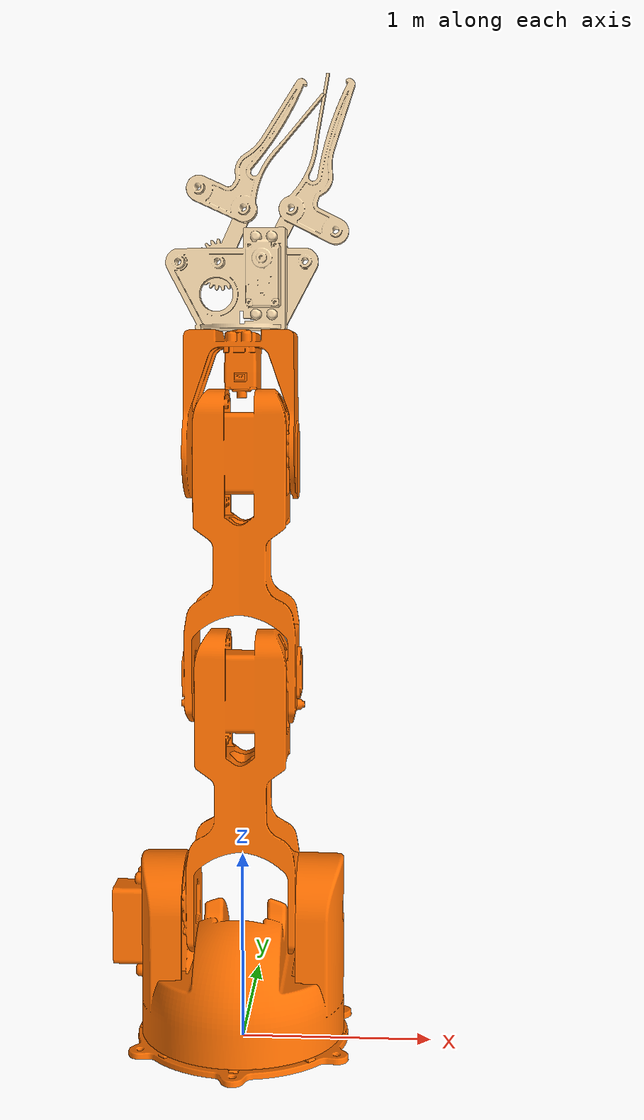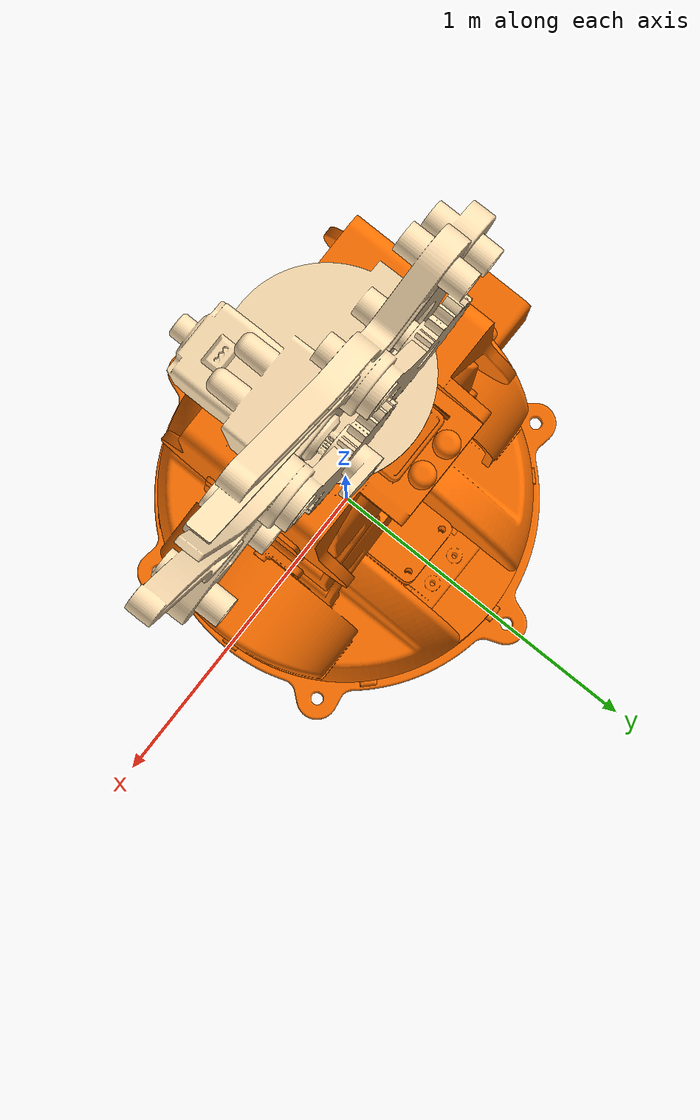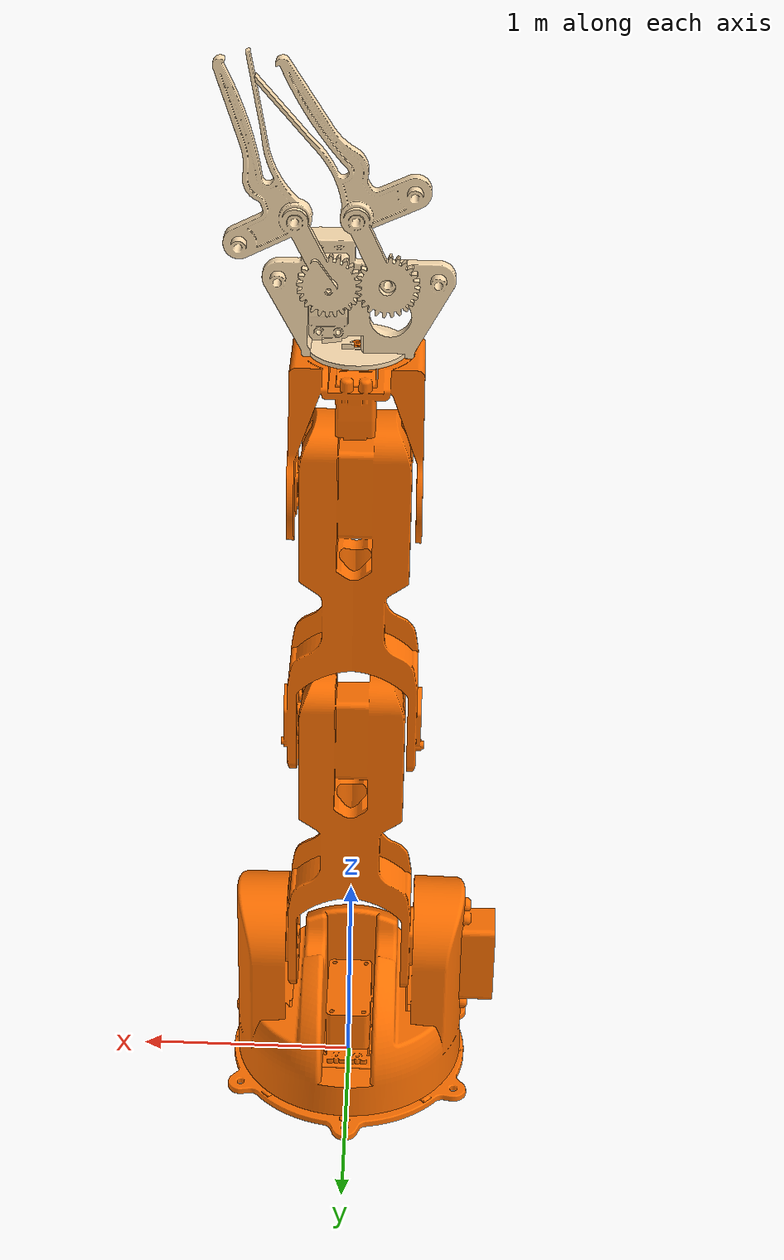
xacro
<?xml version="1.0" ?>
<robot name="tinkerkit" xmlns:xacro="http://www.ros.org/wiki/xacro">

    <xacro:include filename="$(find tinkerkit_description)/urdf/tinkerkit_gazebo.xacro" />

     <!-- Include ros2_control Plugins -->
    <xacro:include filename="$(find tinkerkit_description)/urdf/tinkerkit_ros2_control.xacro" />

    <!-- Useful XACRO Variables (Properties) -->
    <xacro:property name="PI" value="3.14159265359" />
    <xacro:property name="effort" value="30.0" />
    <xacro:property name="velocity" value="10.0" />
    <!-- Useful Macros -->
    <xacro:macro name="deafult_inertial" params="mass">
        <inertial>
            <mass value="${mass}"/>
            <inertia    ixx="1.0"   ixy="0.0"   ixz="0.0"
                        iyy="1.0"   iyz="0.0"
                        izz="1.0"/>
        </inertial>
    </xacro:macro>

    <xacro:macro name="default_transmission" params="number">
        <transmission name="transmission_${number}">
            <plugin>transmission_interface/SimpleTransmission</plugin>
            <actuator name="motor_${number}" role="actuator1"/>
            <joint name="joint_${number}"    role="joint1">
                <mechanical_reduction>1.0</mechanical_reduction>
            </joint>
        </transmission>
    </xacro:macro>

    <link name="world"/>

    <link name="base_link">
        <xacro:deafult_inertial mass="0.25"/>
        <visual>
            <origin xyz="0 0 0" rpy="0 0 0"/>
            <geometry>
                  <mesh filename="file://$(find tinkerkit_description)/meshes/base_link.stl" scale="0.01 0.01 0.01"/>
            </geometry>
            <material name="orange"/>
        </visual>
        <collision>
            <origin xyz="0 0 0" rpy="0 0 0"/>
            <geometry>
                <mesh filename="file://$(find tinkerkit_description)/meshes/base_link.stl" scale="0.01 0.01 0.01"/>
            </geometry>
        </collision>
    </link>

    <link name="shoulder_link">
        <xacro:deafult_inertial mass="0.2"/>
        <visual>
            <origin xyz="-0.0 0.0 -0.18" rpy="0 0 0"/>
            <geometry>
                <mesh filename="file://$(find tinkerkit_description)/meshes/shoulder_link.stl" scale="0.01 0.01 0.01"/>
            </geometry>
            <material name="orange"/>
         </visual>
         <collision>
            <origin xyz="-0.0 0.0 -0.18" rpy="0 0 0"/>
            <geometry>
                <mesh filename="file://$(find tinkerkit_description)/meshes/shoulder_link.stl" scale="0.01 0.01 0.01"/>
            </geometry>
         </collision>
    </link>

    <link name="elbow_link">
        <xacro:deafult_inertial mass="0.15"/>
        <visual>
            <origin xyz="0.0 0.0 -0.6705" rpy="0 0 0"/>
            <geometry>
                <mesh filename="file://$(find tinkerkit_description)/meshes/elbow_link.stl" scale="0.01 0.01 0.01"/>
            </geometry>
            <material name="orange"/>
        </visual>
        <collision>
            <origin xyz="0.0 0.0 -0.6705" rpy="0 0 0"/>
            <geometry>
                <mesh filename="file://$(find tinkerkit_description)/meshes/elbow_link.stl" scale="0.01 0.01 0.01"/>
            </geometry>
        </collision>
    </link>

    <link name="arm_link">
        <xacro:deafult_inertial mass="0.15"/>
        <visual>
            <origin xyz="0.0 0.0 -1.92" rpy="0 0 0"/>
            <geometry>
                <mesh filename="file://$(find tinkerkit_description)/meshes/arm_link.stl" scale="0.01 0.01 0.01"/>
            </geometry>
            <material name="orange"/>
        </visual>
        <collision>
            <origin xyz="0.0 0.0 -1.92" rpy="0 0 0"/>
            <geometry>
                <mesh filename="file://$(find tinkerkit_description)/meshes/arm_link.stl" scale="0.01 0.01 0.01"/>
            </geometry>
        </collision>
    </link>

    <link name="wrist_link">
        <xacro:deafult_inertial mass="0.1"/>
        <visual>
            <origin xyz="0.0 0.00 -3.25" rpy="0 0 0"/>
            <geometry>
                <mesh filename="file://$(find tinkerkit_description)/meshes/wrist_link.stl" scale="0.01 0.01 0.01"/>
            </geometry>
            <material name="orange"/>
        </visual>
        <collision>
            <origin xyz="0.0 0.00 -3.25" rpy="0 0 0"/>
            <geometry>
                <mesh filename="file://$(find tinkerkit_description)/meshes/wrist_link.stl" scale="0.01 0.01 0.01"/>
            </geometry>
        </collision>
    </link>

    <link name="hand_link">
        <xacro:deafult_inertial mass="0.1"/>
        <visual>
            <origin xyz="0.0 0.0 -3.75" rpy="0 0 0"/>
            <geometry>
                <mesh filename="file://$(find tinkerkit_description)/meshes/hand_link.stl" scale="0.01 0.01 0.01"/>
            </geometry>
            <material name="amber"/>
        </visual>
        <collision>
            <origin xyz="0.0 0.0 -3.75" rpy="0 0 0"/>
            <geometry>
                <mesh filename="file://$(find tinkerkit_description)/meshes/hand_link.stl" scale="0.01 0.01 0.01"/>
            </geometry>
        </collision>
    </link>

    <link name="right_gripper">
        <xacro:deafult_inertial mass="0.05"/>
        <visual>
            <origin xyz="0.125 -0.087 -4.1125" rpy="0 0 0"/>
            <geometry>
                <mesh filename="file://$(find tinkerkit_description)/meshes/right_gripper.stl" scale="0.01 0.01 0.01"/>
            </geometry>
            <material name="amber"/>
        </visual>
        <collision>
            <origin xyz="0.125 -0.087 -4.1125" rpy="0 0 0"/>
            <geometry>
                <mesh filename="file://$(find tinkerkit_description)/meshes/right_gripper.stl" scale="0.01 0.01 0.01"/>
            </geometry>
        </collision>
    </link>

    <link name="left_gripper">
        <xacro:deafult_inertial mass="0.05"/>
        <visual>
            <origin xyz="-0.125 -0.087 -4.1125" rpy="0 0 0"/>
            <geometry>
                <mesh filename="file://$(find tinkerkit_description)/meshes/left_gripper.stl" scale="0.01 0.01 0.01"/>
            </geometry>
            <material name="amber"/>
        </visual>
        <collision>
            <origin xyz="-0.125 -0.087 -4.1125" rpy="0 0 0"/>
            <geometry>
                <mesh filename="file://$(find tinkerkit_description)/meshes/left_gripper.stl" scale="0.01 0.01 0.01"/>
            </geometry>
        </collision>
    </link>

    <joint name="virtual_joint" type="fixed">
        <parent link="world"/>
        <child link="base_link"/>
        <origin xyz="0 0 0.05" rpy="0 0 0"/>
    </joint>

    <joint name="base_joint" type="revolute">
        <origin xyz="0.0 0.0 0.18" rpy="0 0 0"/>
        <parent link="base_link"/>
        <child link="shoulder_link"/>
        <axis xyz="0.0 -0.0 1.0"/>
        <limit upper="${PI}" lower="-${PI}" effort="${effort}" velocity="${velocity}"/>
    </joint>

    <joint name="shoulder_joint" type="revolute">
        <origin xyz="0 0 0.50" rpy="0 0 0"/>
        <parent link="shoulder_link"/>
        <child link="elbow_link"/>
        <axis xyz="1.0 0.0 0.0"/>
        <limit upper="${PI/2.57143}" lower="-${PI/2.57143}" effort="${effort}" velocity="${velocity}"/>
      </joint>

    <joint name="elbow_joint" type="revolute">
        <origin xyz="0.0 0.0 1.245" rpy="0 0 0"/>
        <parent link="elbow_link"/>
        <child link="arm_link"/>
        <axis xyz="1.0 0.0 -0.0"/>
        <limit upper="${PI/1.8}" lower="-${PI/1.8}" effort="${effort}" velocity="${velocity}"/>
    </joint>

    <joint name="wrist_joint" type="revolute">
        <origin xyz="0.0 0.0 1.245" rpy="0 0 0"/>
        <parent link="arm_link"/>
        <child link="wrist_link"/>
        <axis xyz="1.0 0.0 -0.0"/>
        <limit upper="${PI/1.636}" lower="-${PI/1.636}" effort="${effort}" velocity="${velocity}"/>
    </joint>

    <joint name="hand_joint" type="revolute">
        <origin xyz="0.0 0.0 0.50" rpy="0 0 0"/>
        <parent link="wrist_link"/>
        <child link="hand_link"/>
        <axis xyz="-0.0 0.0 1.0"/>
        <limit upper="${PI}" lower="-${PI}" effort="${effort}" velocity="${velocity}"/>
    </joint>

    <joint name="right_gripper_joint" type="revolute">
        <origin xyz="-0.12 0.1 0.36" rpy="0 0 0"/>
        <parent link="hand_link"/>
        <child link="right_gripper"/>
        <axis xyz="0.0 1.0 0.0"/>
        <mimic joint="left_gripper_joint" multiplier="1"/>
        <limit upper="${PI/3.6}" lower="${PI/180}" effort="${effort}" velocity="${velocity}"/>
    </joint>

    <joint name="left_gripper_joint" type="revolute">
        <origin xyz="0.12 0.1 0.36" rpy="0 0 0"/>
        <parent link="hand_link"/>
        <child link="left_gripper"/>
        <axis xyz="0.0 -1.0 0.0"/>
        <limit upper="-${PI/180}" lower="-${PI/3.6}" effort="${effort}" velocity="${velocity}"/>
    </joint>

    <material name="orange">
        <color rgba="1.00 0.44 0.0 1" />
    </material>

    <material name="amber">
        <color rgba="1.00 0.88 0.7 1" />
    </material>

    <!-- Transmissions-->
    <xacro:default_transmission number="1"/>
    <xacro:default_transmission number="2"/>
    <xacro:default_transmission number="3"/>
    <xacro:default_transmission number="4"/>

</robot>
